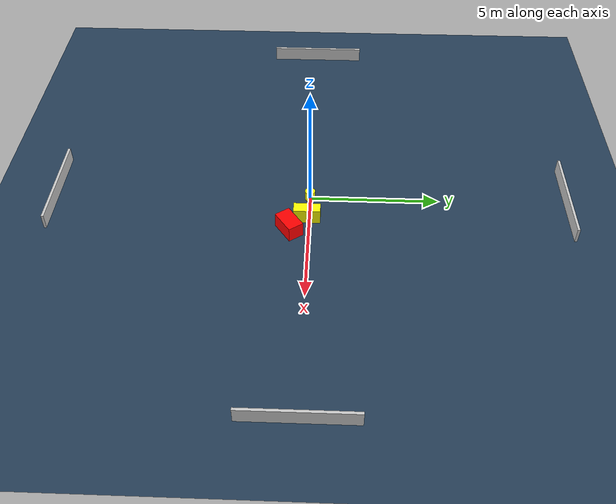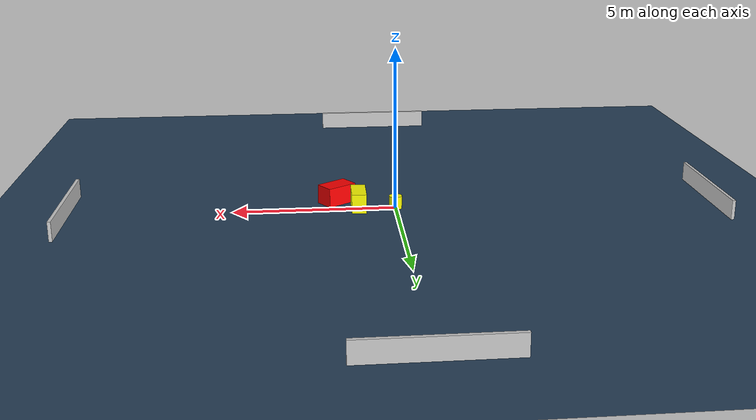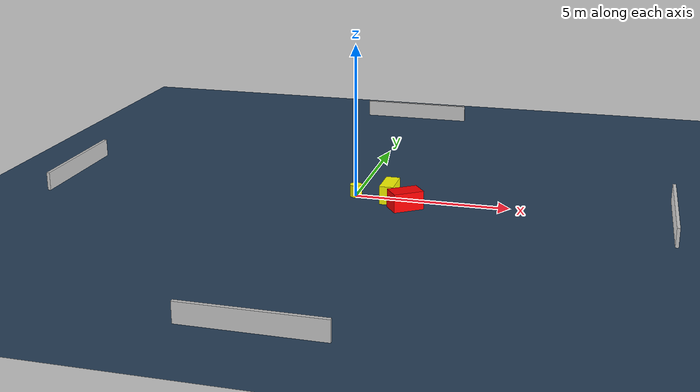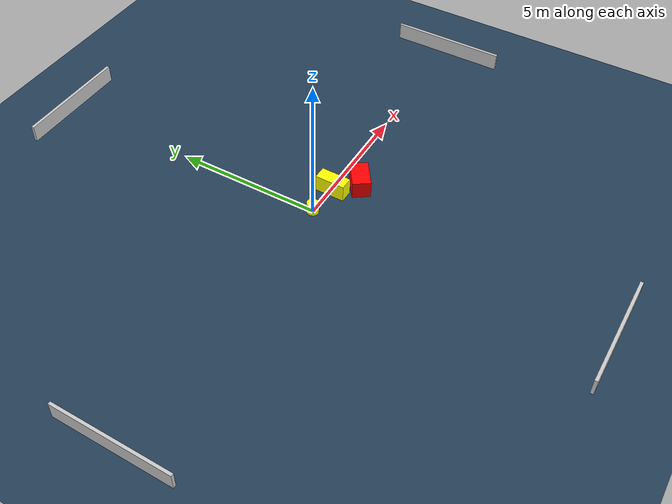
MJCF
<?xml version="1.0" ?>
<mujoco model="generated_environment">
  <option timestep="0.01" integrator="RK4" cone="elliptic"/>
  <default>
    <geom density="1"/>
  </default>
  <asset>
    <texture builtin="gradient" height="3072" name="skybox" rgb1="0.3 0.5 0.7" rgb2="0 0 0" type="skybox" width="512"/>
    <texture builtin="checker" height="300" name="groundplane" rgb1="0.2 0.3 0.4" rgb2="0.1 0.2 0.3" type="2d" width="300"/>
    <material name="groundplane" reflectance="0.2" texrepeat="5 5" texture="groundplane"/>
  </asset>
  <worldbody>
    <light dir="0 0 -1" directional="true" pos="0 0 1.5"/>
    <geom condim="3" friction="0.5 0.005 0.001" material="groundplane" name="floor" pos="0 0 0" size="0 0 0.05" type="plane"/>
    <body name="walls">
      <geom name="wall_1" condim="4" pos="-10.0 0.0 0.3" rgba="0.800000011920929 0.800000011920929 0.800000011920929 1.0" size="0.05 2.0 0.3" type="box"/>
      <geom name="wall_2" condim="4" pos="10.0 0.0 0.3" rgba="0.800000011920929 0.800000011920929 0.800000011920929 1.0" size="0.05 2.0 0.3" type="box"/>
      <geom name="wall_3" condim="4" pos="0.0 -10.0 0.3" rgba="0.800000011920929 0.800000011920929 0.800000011920929 1.0" size="2.0 0.05 0.3" type="box"/>
      <geom name="wall_4" condim="4" pos="0.0 10.0 0.3" rgba="0.800000011920929 0.800000011920929 0.800000011920929 1.0" size="2.0 0.05 0.3" type="box"/>
    </body>
    <body name="robot">
      <joint name="joint_x" type="slide" pos="0 0 0" axis="1 0 0"/>
      <joint name="joint_y" type="slide" pos="0 0 0" axis="0 1 0"/>
      <geom name="robot" type="cylinder" pos="0.0 0.0 0.2" size="0.2 0.2 0.0" mass="5.0" friction="1.0 0.005 0.0001" condim="4" rgba="1.0 1.0 0.0 1.0"/>
    </body>
    <body name="obstacle_1_movable">
      <geom name="obstacle_1_movable" condim="4" pos="1.142676009271102 -0.07965714982843401 0.3" euler="0 0 359.4882874027023" friction="0.0 0.005 0.001" rgba="1.0 1.0 0.0 1.0" size="0.2272087954902873 0.5124766046354545 0.3" type="box" mass="0.1"/>
      <joint type="free"/>
    </body>
    <body name="obstacle_2_static">
      <geom name="obstacle_2_static" condim="4" pos="1.792487483175102 -0.7302972318427954 0.3" euler="0 0 305.0286222819654" friction="0.0 0.005 0.001" rgba="1.0 0.0 0.0 1.0" size="0.3086333844131727 0.49890624175829235 0.3" type="box"/>
    </body>
  </worldbody>
  <actuator>
    <motor name="actuator_x" joint="joint_x" gear="1" ctrlrange="-1 1"/>
    <motor name="actuator_y" joint="joint_y" gear="1" ctrlrange="-1 1"/>
  </actuator>
</mujoco>
